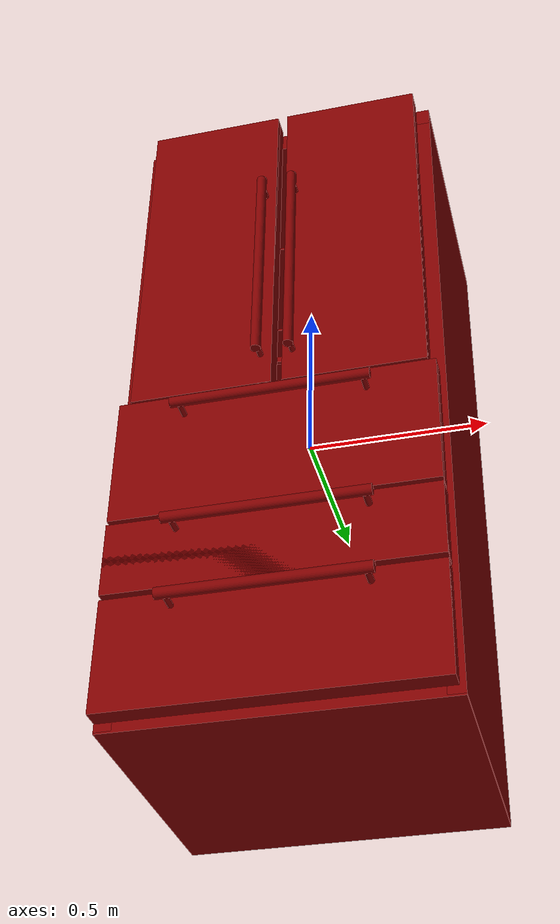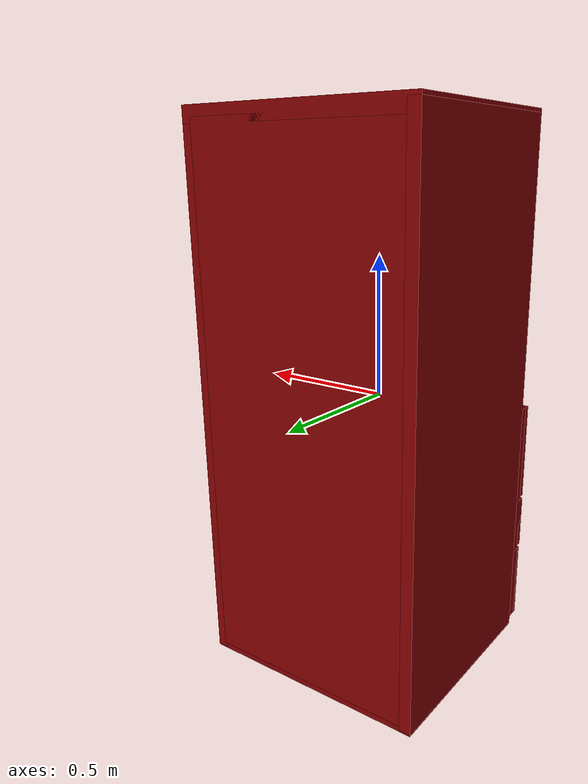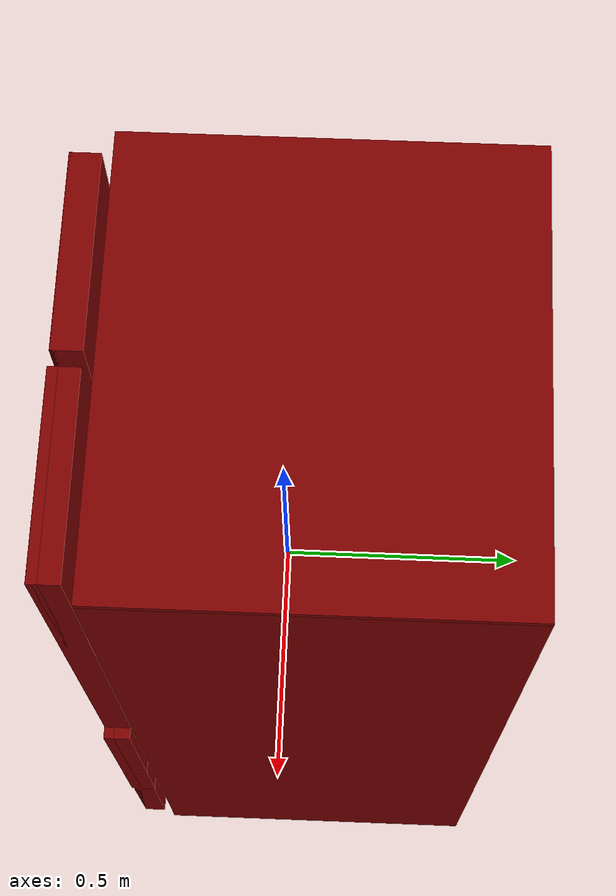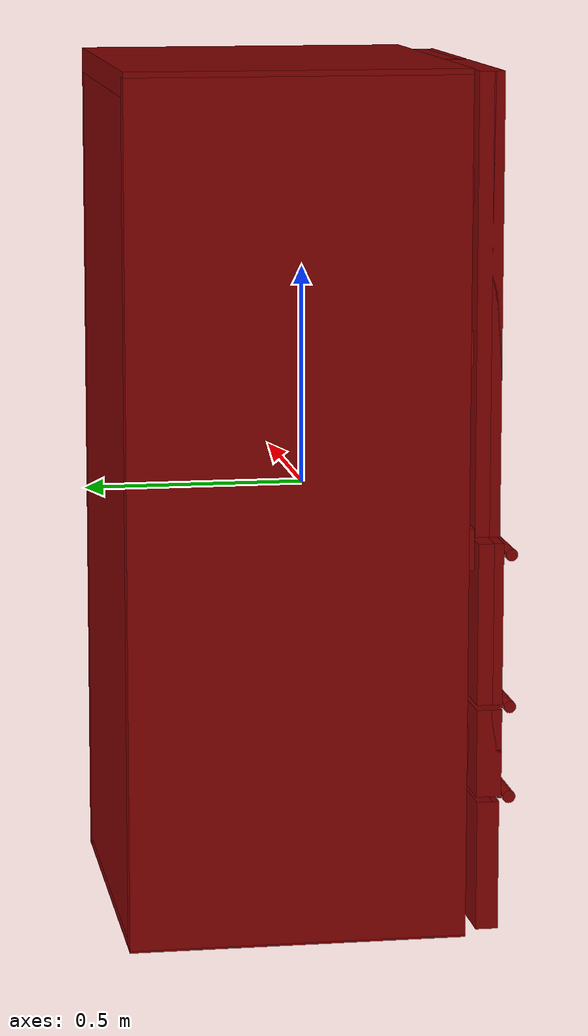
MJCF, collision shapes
<?xml version='1.0' encoding='UTF-8'?>
<mujoco model="model">
  <option timestep="0.002" gravity="0.0 0.0 -9.81"/>
  <compiler angle="radian"/>
  <asset>
    <mesh file="visuals/freezer0.obj" name="freezer0_vis"/>
    <mesh file="visuals/freezer1.obj" name="freezer1_vis"/>
    <mesh file="visuals/freezer2.obj" name="freezer2_vis"/>
    <mesh file="visuals/fridge_drawer0.obj" name="fridge_drawer0_vis"/>
    <mesh file="visuals/fridge_left_door.obj" name="fridge_left_door_vis"/>
    <mesh file="visuals/fridge_left_door_Clear.obj" name="fridge_left_door_Clear_vis"/>
    <mesh file="visuals/fridge_right_door.obj" name="fridge_right_door_vis"/>
    <mesh file="visuals/fridge_right_door_Clear.obj" name="fridge_right_door_Clear_vis"/>
    <mesh file="visuals/Body001.obj" name="Body001_vis"/>
    <mesh file="visuals/Body001_Clear.obj" name="Body001_Clear_vis"/>
    <texture file="visuals/T_BC001.png" name="Body001_material" type="2d"/>
    <material name="Body001_material" rgba="1 1 1 1.0" texture="Body001_material" shininess="0.5" specular="1"/>
    <texture file="visuals/T_BC001.png" name="freezer0_material" type="2d"/>
    <material name="freezer0_material" rgba="1 1 1 1.0" texture="freezer0_material" shininess="0.5" specular="1"/>
    <texture file="visuals/T_BC001.png" name="freezer1_material" type="2d"/>
    <material name="freezer1_material" rgba="1 1 1 1.0" texture="freezer1_material" shininess="0.5" specular="1"/>
    <texture file="visuals/T_BC001.png" name="freezer2_material" type="2d"/>
    <material name="freezer2_material" rgba="1 1 1 1.0" texture="freezer2_material" shininess="0.5" specular="1"/>
    <texture file="visuals/T_BC001.png" name="fridge_drawer0_material" type="2d"/>
    <material name="fridge_drawer0_material" rgba="1 1 1 1.0" texture="fridge_drawer0_material" shininess="0.5" specular="0.3103448502657381"/>
    <texture file="visuals/T_BC001.png" name="fridge_left_door_material" type="2d"/>
    <material name="fridge_left_door_material" rgba="1 1 1 1.0" texture="fridge_left_door_material" shininess="0.5" specular="1"/>
    <texture file="visuals/T_BC001.png" name="fridge_left_door_Clear_material" type="2d"/>
    <material name="fridge_left_door_Clear_material" rgba="1 1 1 0.699999988079071" texture="fridge_left_door_Clear_material" shininess="0.5" specular="0.3103448502657381"/>
    <texture file="visuals/T_BC001.png" name="fridge_right_door_material" type="2d"/>
    <material name="fridge_right_door_material" rgba="1 1 1 1.0" texture="fridge_right_door_material" shininess="0.5" specular="1"/>
    <texture file="visuals/T_BC001.png" name="fridge_right_door_Clear_material" type="2d"/>
    <material name="fridge_right_door_Clear_material" rgba="1 1 1 0.699999988079071" texture="fridge_right_door_Clear_material" shininess="0.5" specular="0.3103448502657381"/>
    <texture file="visuals/T_BC001.png" name="Body001_Clear_material" type="2d"/>
    <material name="Body001_Clear_material" rgba="1 1 1 0.699999988079071" texture="Body001_Clear_material" shininess="0.5" specular="0.3103448502657381"/>
  </asset>
  <default>
    <default class="visual">
      <geom conaffinity="0" contype="0" group="1" type="mesh"/>
    </default>
    <default class="collision">
      <geom group="0" rgba="0.5 0 0 0.5"/>
    </default>
    <default class="spawn">
      <geom group="0" rgba="1 1 1 0.5" contype="0" conaffinity="0"/>
      <site group="0" rgba="1 1 1 0.5"/>
    </default>
    <default class="region">
      <geom group="1" conaffinity="0" contype="0" rgba="0 1 0 0"/>
    </default>
  </default>
  <worldbody>
    <body>
      <body name="object">
        <geom mesh="Body001_vis" type="mesh" solimp="0.998 0.998 0.001" solref="0.001 1" friction="0.95 0.3 0.1" class="visual" material="Body001_material"/>
        <geom class="collision" type="box" pos="-0.00013399665476754308 0.06447411328554153 -0.0886266827583313" size="0.3999479413032532 0.3867715299129486 0.0470595583319664" quat="1.0 0.0 0.0 0.0"/>
        <geom class="collision" type="box" pos="-0.00013399665476754308 0.08992300927639008 -0.4449865221977234" size="0.3999479413032532 0.36132264137268066 0.04415065795183182" quat="1.0 0.0 0.0 0.0"/>
        <geom class="collision" type="box" pos="-0.00013399665476754308 0.08992300927639008 -0.6705933809280396" size="0.3999479413032532 0.36140090227127075 0.036733899265527725" quat="1.0 0.0 0.0 0.0"/>
        <geom class="collision" type="box" pos="-0.00013435666915029287 0.07528030872344971 -0.9536763429641724" size="0.43175753951072693 0.37888437509536743 0.016284508630633354" quat="1.0 0.0 0.0 0.0"/>
        <geom class="collision" type="box" pos="-0.00013366535131353885 0.07527303695678711 0.944145917892456" size="0.4317586421966553 0.3789542317390442 0.028293505311012268" quat="1.0 0.0 0.0 0.0"/>
        <geom class="collision" type="box" pos="-0.41002967953681946 0.07527482509613037 -0.002807188080623746" size="0.021927762776613235 0.37895575165748596 0.9624706506729126" quat="1.0 0.0 0.0 0.0"/>
        <geom class="collision" type="box" pos="0.40976184606552124 0.07527221739292145 -0.0028071862179785967" size="0.0219277236610651 0.37895312905311584 0.9624706506729126" quat="1.0 0.0 0.0 0.0"/>
        <geom class="collision" type="box" pos="-0.00013399665476754308 0.4272623658180237 -0.006178800016641617" size="0.3999081254005432 0.026964757591485977 0.9433217644691467" quat="1.0 0.0 0.0 0.0"/>
        <geom class="collision" type="box" pos="-5.065973527962342e-05 0.08187665790319443 0.6061820387840271" size="0.33722153306007385 0.27503347396850586 0.0030499768909066916" quat="1.0 0.0 0.0 0.0"/>
        <geom class="collision" type="box" pos="-5.0662893045227975e-05 0.08229579776525497 0.28636524081230164" size="0.33722150325775146 0.27461498975753784 0.0030499135609716177" quat="1.0 0.0 0.0 0.0"/>
        <geom class="collision" type="box" pos="-0.0009399434784427285 -0.021683931350708008 0.27292436361312866" size="0.0038265313487499952 0.1539125293493271 0.008033503778278828" quat="1.0 0.0 0.0 0.0"/>
        <geom class="collision" type="box" pos="-0.0009399201953783631 0.2594670057296753 0.25017231702804565" size="0.0038265520706772804 0.1272384077310562 0.03078554943203926" quat="1.0 0.0 0.0 0.0"/>
        <geom class="collision" type="box" pos="0.32965287566185 -0.021683931350708008 0.27292436361312866" size="0.003826610278338194 0.1539125293493271 0.008033503778278828" quat="1.0 0.0 0.0 0.0"/>
        <geom class="collision" type="box" pos="0.32965287566185 0.2594670057296753 0.25017231702804565" size="0.0038265895564109087 0.1272384077310562 0.03078554943203926" quat="1.0 0.0 0.0 0.0"/>
        <geom class="collision" type="box" pos="-0.33032265305519104 -0.021683931350708008 0.27292436361312866" size="0.0038265646435320377 0.1539125293493271 0.008033503778278828" quat="1.0 0.0 0.0 0.0"/>
        <geom class="collision" type="box" pos="-0.33032262325286865 0.2594670057296753 0.25017231702804565" size="0.0038265991024672985 0.1272384077310562 0.03078554943203926" quat="1.0 0.0 0.0 0.0"/>
        <geom class="collision" type="box" pos="-0.00093989132437855 -0.021683931350708008 0.5920451879501343" size="0.0038266184274107218 0.1539125293493271 0.008033503778278828" quat="1.0 0.0 0.0 0.0"/>
        <geom class="collision" type="box" pos="-0.0009399170521646738 0.2594670057296753 0.569293200969696" size="0.003826627740636468 0.1272384077310562 0.03078554943203926" quat="1.0 0.0 0.0 0.0"/>
        <geom class="collision" type="box" pos="0.32965287566185 -0.021683931350708008 0.5920451879501343" size="0.003826649161055684 0.1539125293493271 0.008033503778278828" quat="1.0 0.0 0.0 0.0"/>
        <geom class="collision" type="box" pos="0.32965287566185 0.2594670057296753 0.569293200969696" size="0.0038266496267169714 0.1272384077310562 0.03078554943203926" quat="1.0 0.0 0.0 0.0"/>
        <geom class="collision" type="box" pos="-0.33032262325286865 -0.021683931350708008 0.5920451879501343" size="0.003826639847829938 0.1539125293493271 0.008033503778278828" quat="1.0 0.0 0.0 0.0"/>
        <geom class="collision" type="box" pos="-0.33032265305519104 0.2594670057296753 0.569293200969696" size="0.0038266184274107218 0.1272384077310562 0.03078554943203926" quat="1.0 0.0 0.0 0.0"/>
        <body name="freezer0">
          <geom class="region" name="reg_freezer0" type="box" pos="0.00010037422180175781 0.0012854933738708496 -0.8189382553100586" size="0.34329305386543274 0.2959751913547516 0.07477606630325317"/>
          <joint axis="0.0 -1.0 0.0" pos="-6.583333015441895e-05 -0.07093723118305206 -0.815532386302948" limited="true" name="freezer0_door_joint" range="0.0 0.5" type="slide" damping="1" frictionloss="1" armature=".01" stiffness="0.05"/>
          <geom mesh="freezer0_vis" type="mesh" solimp="0.998 0.998 0.001" solref="0.001 1" friction="0.95 0.3 0.1" class="visual" material="freezer0_material"/>
          <geom class="collision" type="box" pos="-0.00013399665476754308 -0.35537487268447876 -0.8095715045928955" size="0.42000454664230347 0.02528861165046692 0.14819277822971344" quat="1.0 0.0 0.0 0.0"/>
          <geom class="collision" type="box" pos="0.00020126614253968 0.0025204368866980076 -0.8990223407745361" size="0.35140591859817505 0.3098565340042114 0.0009697779314592481" quat="1.0 0.0 0.0 0.0"/>
          <geom class="collision" type="box" pos="-6.612413562834263e-05 0.3104879856109619 -0.819580614566803" size="0.35164567828178406 0.0018648114055395126 0.08040610700845718" quat="1.0 0.0 0.0 0.0"/>
          <geom class="collision" type="box" pos="0.35014593601226807 0.002522309310734272 -0.8194289207458496" size="0.0014610412763431668 0.30980774760246277 0.08056319504976273" quat="1.0 0.0 0.0 0.0"/>
          <geom class="collision" type="box" pos="-0.3502781391143799 0.002522238064557314 -0.8194288611412048" size="0.0014610099606215954 0.30980852246284485 0.0805632472038269" quat="1.0 0.0 0.0 0.0"/>
          <geom class="collision" type="cylinder" pos="0.23993445932865143 -0.4070470333099365 -0.6995123624801636" size="0.008121767081320286 0.03666220232844353" quat="0.5 0.5 0.4999999701976776 -0.5" name="freezer0_door_handle_2"/>
          <geom class="collision" type="cylinder" pos="-0.2377200722694397 -0.4070470333099365 -0.6995123624801636" size="0.007529731839895248 0.033989716321229935" quat="0.5 0.5 0.4999999701976776 -0.5" name="freezer0_door_handle_1"/>
          <geom class="collision" type="cylinder" pos="0.0008210699306800961 -0.440376341342926 -0.6994198560714722" size="0.014790027402341366 0.25877222418785095" quat="0.7071068286895752 -0.0 0.7071067690849304 0.0" name="freezer0_door_handle_main"/>
          <geom class="collision" type="box" pos="-0.00013399665476754308 -0.3731548488140106 -0.8095715045928955" size="0.42000454664230347 0.007508635986596346 0.14819277822971344" quat="1.0 0.0 0.0 0.0" name="freezer0_door_main"/>
          <geom class="collision" type="box" pos="-0.0007377916481345892 -0.30778127908706665 -0.8198358416557312" size="0.35056930780410767 0.007508635986596346 0.0823802500963211" quat="1.0 0.0 0.0 0.0"/>
        </body>
        <body name="freezer1">
          <geom class="region" name="reg_freezer1" type="box" pos="0.00010037422180175781 0.0007288306951522827 -0.5593092739582062" size="0.34329305386543274 0.295418528676033 0.04807631468772888"/>
          <joint axis="0.0 -1.0 0.0" pos="-6.522797048091888e-05 -0.07093720138072968 -0.5496818423271179" limited="true" name="freezer1_door_joint" range="0.0 0.5" type="slide" damping="1" frictionloss="1" armature=".01" stiffness="0.05"/>
          <geom mesh="freezer1_vis" type="mesh" solimp="0.998 0.998 0.001" solref="0.001 1" friction="0.95 0.3 0.1" class="visual" material="freezer1_material"/>
          <geom class="collision" type="box" pos="-0.00013399665476754308 -0.3564911484718323 -0.5496636033058167" size="0.42000454664230347 0.028597764670848846 0.09995020925998688" quat="1.0 0.0 0.0 0.0"/>
          <geom class="collision" type="box" pos="0.00020226230844855309 0.0020770179107785225 -0.6152252554893494" size="0.3513733446598053 0.31024885177612305 0.0005310800042934716" quat="1.0 0.0 0.0 0.0"/>
          <geom class="collision" type="box" pos="0.00020118302199989557 0.3104879856109619 -0.5601717829704285" size="0.3514058589935303 0.0018649663543328643 0.05559072270989418" quat="1.0 0.0 0.0 0.0"/>
          <geom class="collision" type="box" pos="0.35014572739601135 0.002076992765069008 -0.5601726770401001" size="0.0014612486120313406 0.3102502226829529 0.05558044835925102" quat="1.0 0.0 0.0 0.0"/>
          <geom class="collision" type="box" pos="-0.3502781391143799 0.002076918724924326 -0.560171902179718" size="0.001461076084524393 0.31025102734565735 0.05558130890130997" quat="1.0 0.0 0.0 0.0"/>
          <geom class="collision" type="cylinder" pos="0.000821079418528825 -0.440376341342926 -0.48796892166137695" size="0.0140595817938447 0.25877225399017334" quat="0.7071068286895752 -0.0 0.7071067690849304 0.0" name="freezer1_door_handle_main"/>
          <geom class="collision" type="cylinder" pos="-0.2377200722694397 -0.4070470333099365 -0.4880024790763855" size="0.007502472028136253 0.03386666253209114" quat="0.5 0.5 0.4999999701976776 -0.5" name="freezer1_door_handle_1"/>
          <geom class="collision" type="cylinder" pos="0.23993445932865143 -0.4070470333099365 -0.4880024790763855" size="0.0083658741787076 0.03776412084698677" quat="0.5 0.5 0.4999999701976776 -0.5" name="freezer1_door_handle_2"/>
          <geom class="collision" type="box" pos="-0.00013399665476754308 -0.3731115460395813 -0.5496636033058167" size="0.42000454664230347 0.011977366171777248 0.09994330257177353" quat="1.0 0.0 0.0 0.0" name="freezer1_door_main"/>
          <geom class="collision" type="box" pos="-0.00028097856556996703 -0.3117515444755554 -0.5599279403686523" size="0.35102614760398865 0.011977366171777248 0.05586544796824455" quat="1.0 0.0 0.0 0.0"/>
        </body>
        <body name="freezer2">
          <geom class="region" name="reg_freezer2" type="box" pos="0.00010037422180175781 0.0007288306951522827 -0.26996050775051117" size="0.34329305386543274 0.295418528676033 0.09268212115764618"/>
          <joint axis="0.0 -1.0 0.0" pos="-6.613595178350806e-05 -0.07093724608421326 -0.254861056804657" limited="true" name="freezer2_door_joint" range="0.0 0.5" type="slide" damping="1" frictionloss="1" armature=".01" stiffness="0.05"/>
          <geom mesh="freezer2_vis" type="mesh" solimp="0.998 0.998 0.001" solref="0.001 1" friction="0.95 0.3 0.1" class="visual" material="freezer2_material"/>
          <geom class="collision" type="box" pos="-0.00013399665476754308 -0.3565518260002136 -0.25507447123527527" size="0.419242799282074 0.028595970943570137 0.18303528428077698" quat="1.0 0.0 0.0 0.0"/>
          <geom class="collision" type="box" pos="-0.0015341822290793061 0.002073821146041155 -0.37368839979171753" size="0.34967049956321716 0.3103087246417999 0.000969756452832371" quat="1.0 0.0 0.0 0.0"/>
          <geom class="collision" type="box" pos="0.00020239735022187233 0.31048789620399475 -0.2740156352519989" size="0.35137051343917847 0.0018647989491000772 0.10063576698303223" quat="1.0 0.0 0.0 0.0"/>
          <geom class="collision" type="box" pos="0.3501459062099457 0.002077206037938595 -0.2731657922267914" size="0.0014610732905566692 0.3102470934391022 0.10149236768484116" quat="1.0 0.0 0.0 0.0"/>
          <geom class="collision" type="box" pos="-0.3502781391143799 0.00207709614187479 -0.2734798192977905" size="0.001461076783016324 0.31024783849716187 0.10117834061384201" quat="1.0 0.0 0.0 0.0"/>
          <geom class="collision" type="cylinder" pos="0.23993445932865143 -0.4070470333099365 -0.13443587720394135" size="0.007350651081651449 0.033181332051754" quat="0.5 0.5 0.4999999701976776 -0.5" name="freezer2_door_handle_2"/>
          <geom class="collision" type="cylinder" pos="-0.2377200722694397 -0.4070470333099365 -0.13443587720394135" size="0.007350651081651449 0.033181332051754" quat="0.5 0.5 0.4999999701976776 -0.5" name="freezer2_door_handle_1"/>
          <geom class="collision" type="cylinder" pos="0.0008211028762161732 -0.440376341342926 -0.13434341549873352" size="0.013850869610905647 0.25877225399017334" quat="0.7071068286895752 -0.0 0.7071067690849304 0.0" name="freezer2_door_handle_main"/>
          <geom class="collision" type="box" pos="-0.00013399665476754308 -0.3741771876811981 -0.25507447123527527" size="0.4192579984664917 0.010971879586577415 0.18304795026779175" quat="1.0 0.0 0.0 0.0" name="freezer2_door_main"/>
          <geom class="collision" type="box" pos="-7.019043550826609e-06 -0.31047993898391724 -0.2721339464187622" size="0.3501594662666321 0.010414138436317444 0.10111083090305328" quat="1.0 0.0 0.0 0.0"/>
        </body>
        <body name="fridge_drawer0">
          <geom class="region" name="reg_fridge_drawer0" type="box" pos="0.002929896116256714 0.10004615783691406 0.07945136446505785" size="0.22513897514343262 0.2645689675807953 0.09988372104614973"/>
          <joint axis="0.0 -1.0 0.0" pos="0.002504657953977585 0.09708143770694733 0.0759696364402771" limited="true" name="fridge_drawer0_joint" range="0.0 0.5" type="slide" damping="1" frictionloss="1" armature=".01" stiffness="0.05"/>
          <geom mesh="fridge_drawer0_vis" type="mesh" solimp="0.998 0.998 0.001" solref="0.001 1" friction="0.95 0.3 0.1" class="visual" material="fridge_drawer0_material"/>
          <geom class="collision" type="box" pos="0.21386530995368958 -0.18348529934883118 0.14336903393268585" size="0.030655859038233757 0.00422917865216732 0.041308920830488205" quat="1.0 0.0 0.0 0.0"/>
          <geom class="collision" type="box" pos="-0.20805875957012177 -0.1834852695465088 0.14336903393268585" size="0.033260006457567215 0.004229210317134857 0.04130912199616432" quat="1.0 0.0 0.0 0.0"/>
          <geom class="collision" type="box" pos="0.0016013744752854109 -0.18348529934883118 0.03527094051241875" size="0.2424848973751068 0.004229214508086443 0.07027726620435715" quat="1.0 0.0 0.0 0.0"/>
          <geom class="collision" type="box" pos="0.002677417127415538 -0.18425938487052917 0.1789802461862564" size="0.24173784255981445 0.00500309094786644 0.008780845440924168" quat="1.0 0.0 0.0 0.0"/>
          <geom class="collision" type="box" pos="-0.2355773150920868 0.10171693563461304 0.0775151401758194" size="0.005487506277859211 0.28084343671798706 0.11023811250925064" quat="1.0 0.0 0.0 0.0"/>
          <geom class="collision" type="box" pos="0.24040058255195618 0.10102833062410355 0.0775151401758194" size="0.004412728827446699 0.2807350158691406 0.110238216817379" quat="1.0 0.0 0.0 0.0"/>
          <geom class="collision" type="box" pos="0.001488185254856944 0.10091280937194824 -0.031191881746053696" size="0.24263273179531097 0.28054341673851013 0.00440264493227005" quat="1.0 0.0 0.0 0.0"/>
          <geom class="collision" type="box" pos="0.0032178673427551985 0.3781997263431549 0.0764784961938858" size="0.24227656424045563 0.004624526482075453 0.10920175909996033" quat="1.0 0.0 0.0 0.0"/>
        </body>
        <body name="fridge_left_door">
          <joint axis="0.0 0.0 -1.0" pos="-0.39066505432128906 -0.3538122773170471 0.44921910762786865" limited="true" name="fridge_left_door_joint" range="0.0 1.5707963267948966" type="hinge" damping="1" frictionloss="1" armature=".01" stiffness="0.05"/>
          <geom mesh="fridge_left_door_vis" type="mesh" solimp="0.998 0.998 0.001" solref="0.001 1" friction="0.95 0.3 0.1" class="visual" material="fridge_left_door_material"/>
          <geom class="collision" type="box" pos="-0.21446019411087036 -0.2671769857406616 0.31673663854599" size="0.14336563646793365 0.0571720264852047 0.0037615143228322268" quat="1.0 0.0 0.0 0.0"/>
          <geom class="collision" type="box" pos="-0.21446019411087036 -0.3326944410800934 0.3526189923286438" size="0.14335346221923828 0.0046825832687318325 0.039373692125082016" quat="1.0 0.0 0.0 0.0"/>
          <geom class="collision" type="box" pos="-0.21446019411087036 -0.21211181581020355 0.3493254780769348" size="0.14336563646793365 0.004683000035583973 0.03478723764419556" quat="1.0 0.0 0.0 0.0"/>
          <geom class="collision" type="box" pos="-0.07370350509881973 -0.26717692613601685 0.35360556840896606" size="0.003901515621691942 0.05717901512980461 0.03991582244634628" quat="1.0 0.0 0.0 0.0"/>
          <geom class="collision" type="box" pos="-0.35507452487945557 -0.26717692613601685 0.3529898524284363" size="0.0039015235379338264 0.05717901512980461 0.03991582617163658" quat="1.0 0.0 0.0 0.0"/>
          <geom class="collision" type="box" pos="-0.2144598811864853 -0.2648744583129883 0.6741377115249634" size="0.14336563646793365 0.05717332661151886 0.0037615748587995768" quat="1.0 0.0 0.0 0.0"/>
          <geom class="collision" type="box" pos="-0.2144598811864853 -0.3326944410800934 0.7100199460983276" size="0.14335577189922333 0.004682662431150675 0.03937489911913872" quat="1.0 0.0 0.0 0.0"/>
          <geom class="collision" type="box" pos="-0.2144598811864853 -0.2098092883825302 0.7067265510559082" size="0.14336563646793365 0.004683000035583973 0.03478723764419556" quat="1.0 0.0 0.0 0.0"/>
          <geom class="collision" type="box" pos="-0.07370318472385406 -0.2648743987083435 0.7110066413879395" size="0.003901595715433359 0.05717901512980461 0.039915814995765686" quat="1.0 0.0 0.0 0.0"/>
          <geom class="collision" type="box" pos="-0.3550742268562317 -0.2648743987083435 0.7103908658027649" size="0.003901603864505887 0.05717901512980461 0.03991582244634628" quat="1.0 0.0 0.0 0.0"/>
          <geom class="collision" type="box" pos="-0.2022995948791504 -0.35299602150917053 0.4509809613227844" size="0.18996977806091309 0.028667094185948372 0.5130335688591003" quat="1.0 0.0 0.0 0.0"/>
          <geom class="collision" type="box" pos="-0.2022995948791504 -0.3696701228618622 0.4509809613227844" size="0.18996977806091309 0.011994974687695503 0.5130335688591003" quat="1.0 0.0 0.0 0.0" name="fridge_left_door_main"/>
          <geom class="collision" type="cylinder" pos="-0.04111017659306526 -0.4068422019481659 0.6293106079101562" size="0.007803468964993954 0.02586364932358265" quat="1.0677025841232535e-07 9.30011547373849e-14 0.7071068286895752 -0.7071067094802856" name="fridge_left_door_handle_1"/>
          <geom class="collision" type="cylinder" pos="-0.04111017659306526 -0.4068422019481659 0.032748203724622726" size="0.007803468964993954 0.02586364932358265" quat="1.0677025841232535e-07 9.30011547373849e-14 0.7071068286895752 -0.7071067094802856" name="fridge_left_door_handle_2"/>
          <geom class="collision" type="cylinder" pos="-0.04101753234863281 -0.43140700459480286 0.33132824301719666" size="0.013910680077970028 0.3180851638317108" quat="7.549789415861596e-08 -6.71794140316706e-08 1.0 6.717942113709796e-08" name="fridge_left_door_handle_main"/>
          <body name="fridge_left_door_Clear">
            <geom mesh="fridge_left_door_Clear_vis" type="mesh" solimp="0.998 0.998 0.001" solref="0.001 1" friction="0.95 0.3 0.1" class="visual" material="fridge_left_door_Clear_material"/>
            <geom class="collision" type="box" pos="-0.21446019411087036 -0.2671769857406616 0.31673663854599" size="0.14336563646793365 0.0571720264852047 0.0037615143228322268" quat="1.0 0.0 0.0 0.0"/>
            <geom class="collision" type="box" pos="-0.21446019411087036 -0.3326944410800934 0.3526189923286438" size="0.14335346221923828 0.0046825832687318325 0.039373692125082016" quat="1.0 0.0 0.0 0.0"/>
            <geom class="collision" type="box" pos="-0.21446019411087036 -0.21211181581020355 0.3493254780769348" size="0.14336563646793365 0.004683000035583973 0.03478723764419556" quat="1.0 0.0 0.0 0.0"/>
            <geom class="collision" type="box" pos="-0.07370350509881973 -0.26717692613601685 0.35360556840896606" size="0.003901515621691942 0.05717901512980461 0.03991582244634628" quat="1.0 0.0 0.0 0.0"/>
            <geom class="collision" type="box" pos="-0.35507452487945557 -0.26717692613601685 0.3529898524284363" size="0.0039015235379338264 0.05717901512980461 0.03991582617163658" quat="1.0 0.0 0.0 0.0"/>
            <geom class="collision" type="box" pos="-0.2144598811864853 -0.2648744583129883 0.6741377115249634" size="0.14336563646793365 0.05717332661151886 0.0037615748587995768" quat="1.0 0.0 0.0 0.0"/>
            <geom class="collision" type="box" pos="-0.2144598811864853 -0.3326944410800934 0.7100199460983276" size="0.14335577189922333 0.004682662431150675 0.03937489911913872" quat="1.0 0.0 0.0 0.0"/>
            <geom class="collision" type="box" pos="-0.2144598811864853 -0.2098092883825302 0.7067265510559082" size="0.14336563646793365 0.004683000035583973 0.03478723764419556" quat="1.0 0.0 0.0 0.0"/>
            <geom class="collision" type="box" pos="-0.07370318472385406 -0.2648743987083435 0.7110066413879395" size="0.003901595715433359 0.05717901512980461 0.039915814995765686" quat="1.0 0.0 0.0 0.0"/>
            <geom class="collision" type="box" pos="-0.3550742268562317 -0.2648743987083435 0.7103908658027649" size="0.003901603864505887 0.05717901512980461 0.03991582244634628" quat="1.0 0.0 0.0 0.0"/>
          </body>
        </body>
        <body name="fridge_right_door">
          <joint axis="0.0 0.0 1.0" pos="0.3962591290473938 -0.3573495149612427 0.44921910762786865" limited="true" name="fridge_right_door_joint" range="0.0 1.5707963267948966" type="hinge" damping="1" frictionloss="1" armature=".01" stiffness="0.05"/>
          <geom mesh="fridge_right_door_vis" type="mesh" solimp="0.998 0.998 0.001" solref="0.001 1" friction="0.95 0.3 0.1" class="visual" material="fridge_right_door_material"/>
          <geom class="collision" type="box" pos="0.21565814316272736 -0.2608833312988281 0.6741378307342529" size="0.14336563646793365 0.05717137083411217 0.0037614840548485518" quat="1.0 0.0 0.0 0.0"/>
          <geom class="collision" type="box" pos="0.21565814316272736 -0.33385661244392395 0.7100200653076172" size="0.14335229992866516 0.004682543687522411 0.03937308117747307" quat="1.0 0.0 0.0 0.0"/>
          <geom class="collision" type="box" pos="0.21565814316272736 -0.20581822097301483 0.7067265510559082" size="0.14336563646793365 0.004683000035583973 0.03478723764419556" quat="1.0 0.0 0.0 0.0"/>
          <geom class="collision" type="box" pos="0.3564148545265198 -0.2608833312988281 0.711006760597229" size="0.00390147534199059 0.05717901512980461 0.03991582244634628" quat="1.0 0.0 0.0 0.0"/>
          <geom class="collision" type="box" pos="0.07504381239414215 -0.2608833312988281 0.7103910446166992" size="0.003901483491063118 0.05717901512980461 0.03991582244634628" quat="1.0 0.0 0.0 0.0"/>
          <geom class="collision" type="box" pos="0.21565814316272736 -0.2669946551322937 0.31673672795295715" size="0.14336563646793365 0.057172682136297226 0.0037615445908159018" quat="1.0 0.0 0.0 0.0"/>
          <geom class="collision" type="box" pos="0.21565814316272736 -0.3338566720485687 0.35261908173561096" size="0.1433546096086502 0.004682622849941254 0.03937429562211037" quat="1.0 0.0 0.0 0.0"/>
          <geom class="collision" type="box" pos="0.21565814316272736 -0.2119295448064804 0.34932559728622437" size="0.14336563646793365 0.004683000035583973 0.03478723764419556" quat="1.0 0.0 0.0 0.0"/>
          <geom class="collision" type="box" pos="0.356414794921875 -0.2669945955276489 0.3536056876182556" size="0.0039015556685626507 0.05717901512980461 0.03991582244634628" quat="1.0 0.0 0.0 0.0"/>
          <geom class="collision" type="box" pos="0.07504381239414215 -0.2669945955276489 0.35298991203308105" size="0.003901563584804535 0.05717901512980461 0.03991582617163658" quat="1.0 0.0 0.0 0.0"/>
          <geom class="collision" type="box" pos="0.2065921276807785 -0.3537568151950836 0.4509809613227844" size="0.18996977806091309 0.028667185455560684 0.5130335688591003" quat="1.0 0.0 0.0 0.0"/>
          <geom class="collision" type="cylinder" pos="0.04520506039261818 -0.4068422019481659 0.6293106079101562" size="0.007803468964993954 0.02586364932358265" quat="1.0677025841232535e-07 9.30011547373849e-14 0.7071068286895752 -0.7071067094802856" name="fridge_right_door_handle_1"/>
          <geom class="collision" type="cylinder" pos="0.04520506039261818 -0.4068422019481659 0.032748203724622726" size="0.007803468964993954 0.02586364932358265" quat="1.0677025841232535e-07 9.30011547373849e-14 0.7071068286895752 -0.7071067094802856" name="fridge_right_door_handle_2"/>
          <geom class="collision" type="cylinder" pos="0.04529770463705063 -0.43140700459480286 0.33132824301719666" size="0.013910680077970028 0.3180851638317108" quat="7.549789415861596e-08 -6.71794140316706e-08 1.0 6.717942113709796e-08" name="fridge_right_door_handle_main"/>
          <geom class="collision" type="box" pos="0.2065921276807785 -0.37296539545059204 0.4509809613227844" size="0.18996977806091309 0.009460550732910633 0.5130335688591003" quat="1.0 0.0 0.0 0.0" name="fridge_right_door_main"/>
          <body name="fridge_right_door_Clear">
            <geom mesh="fridge_right_door_Clear_vis" type="mesh" solimp="0.998 0.998 0.001" solref="0.001 1" friction="0.95 0.3 0.1" class="visual" material="fridge_right_door_Clear_material"/>
            <geom class="collision" type="box" pos="0.21565814316272736 -0.2608833312988281 0.6741378307342529" size="0.14336563646793365 0.05717137083411217 0.0037614840548485518" quat="1.0 0.0 0.0 0.0"/>
            <geom class="collision" type="box" pos="0.21565814316272736 -0.33385661244392395 0.7100200653076172" size="0.14335229992866516 0.004682543687522411 0.03937308117747307" quat="1.0 0.0 0.0 0.0"/>
            <geom class="collision" type="box" pos="0.21565814316272736 -0.20581822097301483 0.7067265510559082" size="0.14336563646793365 0.004683000035583973 0.03478723764419556" quat="1.0 0.0 0.0 0.0"/>
            <geom class="collision" type="box" pos="0.3564148545265198 -0.2608833312988281 0.711006760597229" size="0.00390147534199059 0.05717901512980461 0.03991582244634628" quat="1.0 0.0 0.0 0.0"/>
            <geom class="collision" type="box" pos="0.07504381239414215 -0.2608833312988281 0.7103910446166992" size="0.003901483491063118 0.05717901512980461 0.03991582244634628" quat="1.0 0.0 0.0 0.0"/>
            <geom class="collision" type="box" pos="0.21565814316272736 -0.2669946551322937 0.31673672795295715" size="0.14336563646793365 0.057172682136297226 0.0037615445908159018" quat="1.0 0.0 0.0 0.0"/>
            <geom class="collision" type="box" pos="0.21565814316272736 -0.3338566720485687 0.35261908173561096" size="0.1433546096086502 0.004682622849941254 0.03937429562211037" quat="1.0 0.0 0.0 0.0"/>
            <geom class="collision" type="box" pos="0.21565814316272736 -0.2119295448064804 0.34932559728622437" size="0.14336563646793365 0.004683000035583973 0.03478723764419556" quat="1.0 0.0 0.0 0.0"/>
            <geom class="collision" type="box" pos="0.356414794921875 -0.2669945955276489 0.3536056876182556" size="0.0039015556685626507 0.05717901512980461 0.03991582244634628" quat="1.0 0.0 0.0 0.0"/>
            <geom class="collision" type="box" pos="0.07504381239414215 -0.2669945955276489 0.35298991203308105" size="0.003901563584804535 0.05717901512980461 0.03991582617163658" quat="1.0 0.0 0.0 0.0"/>
          </body>
        </body>
        <body name="Body001_Clear">
          <geom mesh="Body001_Clear_vis" type="mesh" solimp="0.998 0.998 0.001" solref="0.001 1" friction="0.95 0.3 0.1" class="visual" material="Body001_Clear_material"/>
          <geom class="collision" type="box" pos="-5.065973527962342e-05 0.08187665790319443 0.6061820387840271" size="0.33722153306007385 0.27503347396850586 0.0030499768909066916" quat="1.0 0.0 0.0 0.0"/>
          <geom class="collision" type="box" pos="-5.0662893045227975e-05 0.08229579776525497 0.28636524081230164" size="0.33722150325775146 0.27461498975753784 0.0030499135609716177" quat="1.0 0.0 0.0 0.0"/>
        </body>
        <geom class="region" name="reg_fridge_shelf1" type="box" pos="0.0008389204740524292 0.08273360133171082 0.762322723865509" size="0.33195161616802216 0.26890401339530945 0.1480535397529602"/>
        <geom class="region" name="reg_fridge_shelf0" type="box" pos="-0.0004532039165496826 0.08294907212257385 0.4126630574464798" size="0.33065949177742004 0.26844207739830017 0.1187280992269516"/>
        <geom class="region" name="reg_main" type="box" pos="-7.450580596923828e-09 0.02913828194141388 0.0" size="0.4329606423377991 0.42608891224861145 0.9734394083023071"/>
      </body>
    </body>
  </worldbody>
  <actuator>
    <motor name="freezer0_door_joint_actuator" joint="freezer0_door_joint" gear="50"/>
    <motor name="freezer1_door_joint_actuator" joint="freezer1_door_joint" gear="50"/>
    <motor name="freezer2_door_joint_actuator" joint="freezer2_door_joint" gear="50"/>
    <motor name="fridge_drawer0_joint_actuator" joint="fridge_drawer0_joint" gear="50"/>
    <motor name="fridge_left_door_joint_actuator" joint="fridge_left_door_joint" gear="50"/>
    <motor name="fridge_right_door_joint_actuator" joint="fridge_right_door_joint" gear="50"/>
  </actuator>
</mujoco>
